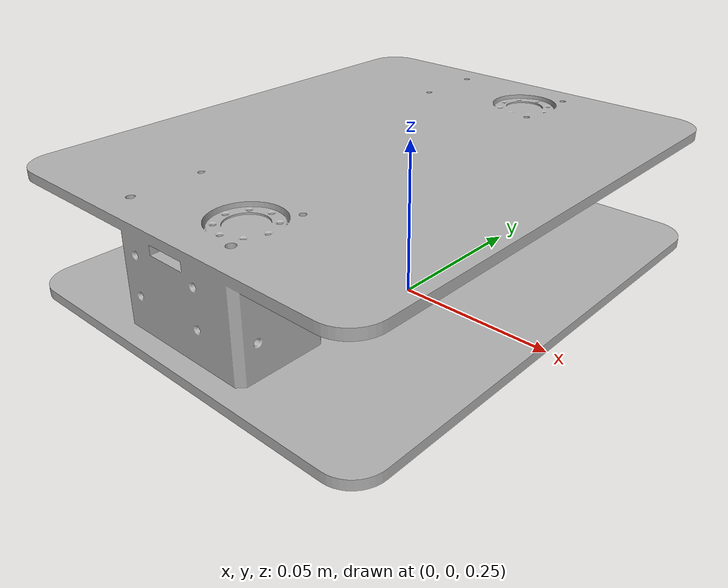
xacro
<?xml version="1.0" ?>
<robot name="legs" xmlns:xacro="http://www.ros.org/wiki/xacro">

<xacro:include filename="$(find legs_description)/urdf/materials.xacro" />
<xacro:include filename="$(find legs_description)/urdf/legs.ros2control" />
<xacro:include filename="$(find legs_description)/urdf/legs.gazebo" />
<link name="base_link">
  <inertial>
    <origin xyz="0.0 0.0 0.0" rpy="0 0 0"/>
    <mass value="0.0"/>
    <inertia ixx="192376.181216" iyy="292451.992486" izz="115328.934937" ixy="-3096.647219" iyz="-6168.566967" ixz="-46887.130526"/>
  </inertial>
  <visual>
    <origin xyz="0 0 0" rpy="0 0 0"/>
    <geometry>
      <mesh filename="file://$(find legs_description)/meshes/base_link.stl" scale="0.001 0.001 0.001"/>
    </geometry>
    <material name="silver"/>
  </visual>
  <collision>
    <origin xyz="0 0 0" rpy="0 0 0"/>
    <geometry>
      <mesh filename="file://$(find legs_description)/meshes/base_link.stl" scale="0.001 0.001 0.001"/>
    </geometry>
  </collision>
</link>

</robot>

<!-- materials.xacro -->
<robot name="legs" xmlns:xacro="http://www.ros.org/wiki/xacro" >

<material name="silver">
  <color rgba="0.700 0.700 0.700 1.000"/>
</material>

</robot>

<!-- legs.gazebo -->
<robot name="legs" xmlns:xacro="http://www.ros.org/wiki/xacro" >

<xacro:property name="body_color" value="Gazebo/Silver" />

<gazebo reference="base_link">
  <material>${body_color}</material>
  <mu1>0.2</mu1>
  <mu2>0.2</mu2>
  <self_collide>true</self_collide>
  <gravity>true</gravity>
</gazebo>

</robot>
